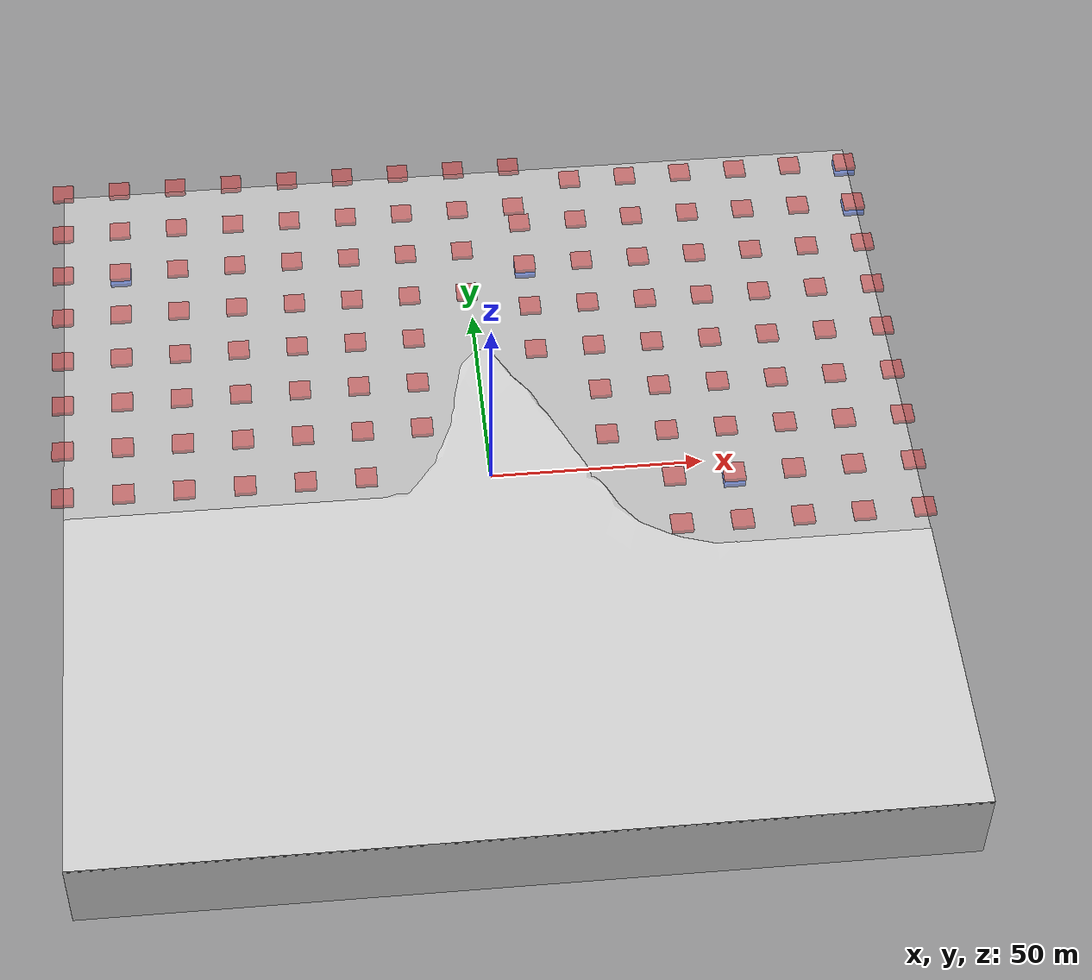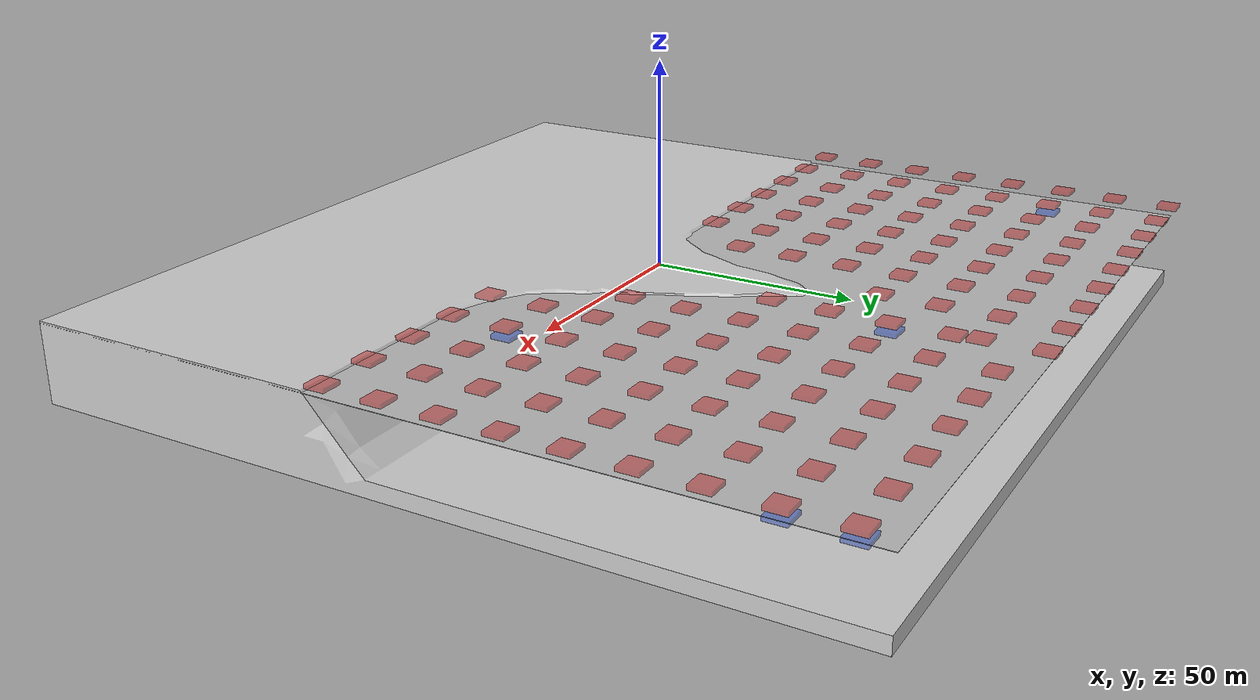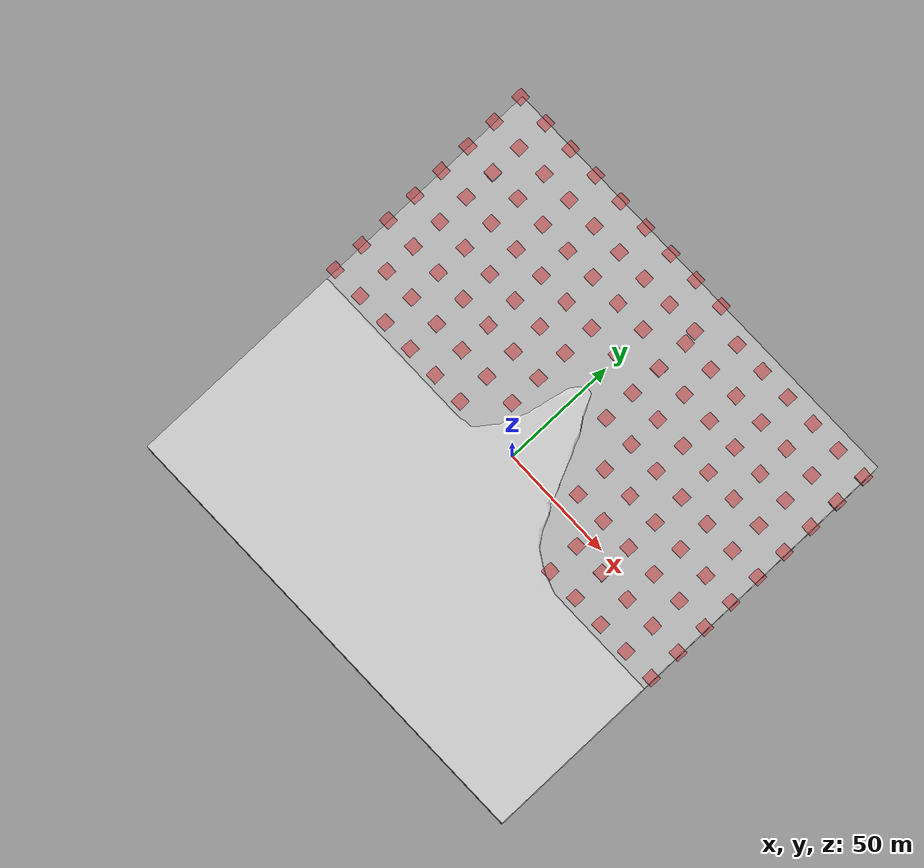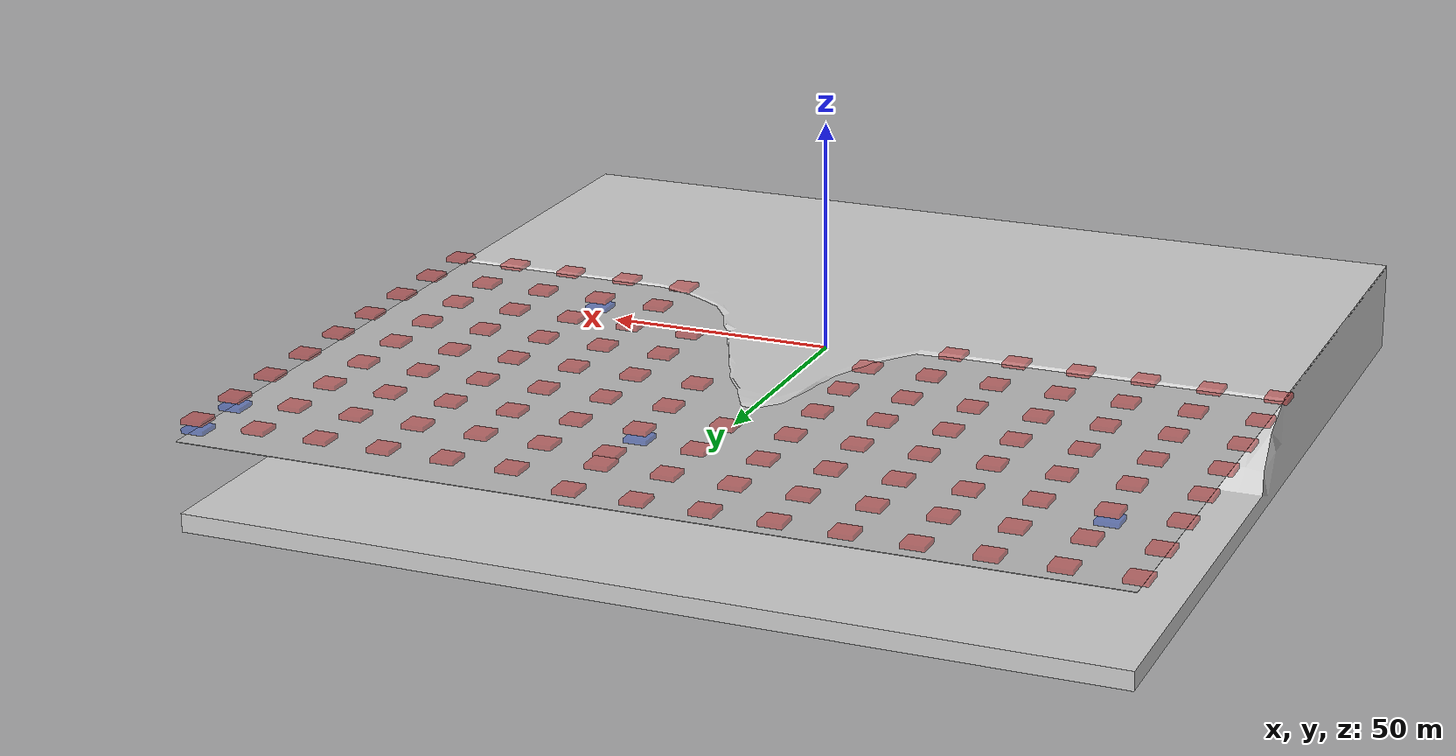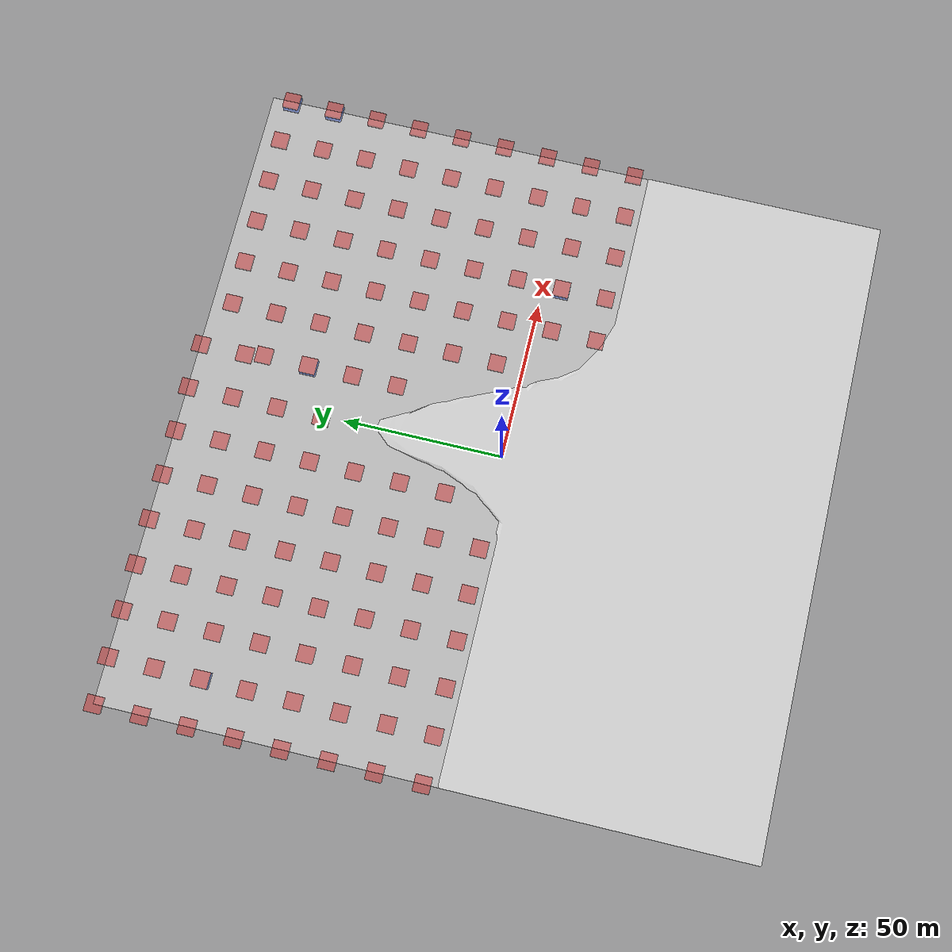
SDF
<?xml version="1.0"?>
<sdf version="1.5">
  <world name="default">
    <include>
      <uri>model://sun</uri>
    </include>
    <include>
      <uri>model://smooth</uri>
      <pose>0 0 0 0 0 0</pose>
    </include>
    <include>
      <name>rect red 1</name>
      <uri>model://rect_red</uri>
      <pose>-100.00 0.00 2 0 0 0</pose>
    </include>
    <include>
      <name>rect red 2</name>
      <uri>model://rect_red</uri>
      <pose>-100.00 14.14 2 0 0 0</pose>
    </include>
    <include>
      <name>rect red 3</name>
      <uri>model://rect_red</uri>
      <pose>-100.00 28.28 2 0 0 0</pose>
    </include>
    <include>
      <name>rect red 4</name>
      <uri>model://rect_red</uri>
      <pose>-100.00 42.43 2 0 0 0</pose>
    </include>
    <include>
      <name>rect red 5</name>
      <uri>model://rect_red</uri>
      <pose>-100.00 56.57 2 0 0 0</pose>
    </include>
    <include>
      <name>rect red 6</name>
      <uri>model://rect_red</uri>
      <pose>-100.00 70.71 2 0 0 0</pose>
    </include>
    <include>
      <name>rect red 7</name>
      <uri>model://rect_red</uri>
      <pose>-100.00 84.85 2 0 0 0</pose>
    </include>
    <include>
      <name>rect red 8</name>
      <uri>model://rect_red</uri>
      <pose>-100.00 98.99 2 0 0 0</pose>
    </include>
    <include>
      <name>rect red 9</name>
      <uri>model://rect_red</uri>
      <pose>-85.86 0.00 2 0 0 0</pose>
    </include>
    <include>
      <name>rect red 10</name>
      <uri>model://rect_red</uri>
      <pose>-85.86 14.14 2 0 0 0</pose>
    </include>
    <include>
      <name>rect red 11</name>
      <uri>model://rect_red</uri>
      <pose>-85.86 28.28 2 0 0 0</pose>
    </include>
    <include>
      <name>rect red 12</name>
      <uri>model://rect_red</uri>
      <pose>-85.86 42.43 2 0 0 0</pose>
    </include>
    <include>
      <name>rect red 13</name>
      <uri>model://rect_red</uri>
      <pose>-85.86 56.57 2 0 0 0</pose>
    </include>
    <include>
      <name>rect red 14</name>
      <uri>model://rect_red</uri>
      <pose>-85.86 70.71 2 0 0 0</pose>
    </include>
    <include>
      <name>rect red 15</name>
      <uri>model://rect_red</uri>
      <pose>-85.86 84.85 2 0 0 0</pose>
    </include>
    <include>
      <name>rect red 16</name>
      <uri>model://rect_red</uri>
      <pose>-85.86 98.99 2 0 0 0</pose>
    </include>
    <include>
      <name>rect red 17</name>
      <uri>model://rect_red</uri>
      <pose>-71.72 0.00 2 0 0 0</pose>
    </include>
    <include>
      <name>rect red 18</name>
      <uri>model://rect_red</uri>
      <pose>-71.72 14.14 2 0 0 0</pose>
    </include>
    <include>
      <name>rect red 19</name>
      <uri>model://rect_red</uri>
      <pose>-71.72 28.28 2 0 0 0</pose>
    </include>
    <include>
      <name>rect red 20</name>
      <uri>model://rect_red</uri>
      <pose>-71.72 42.43 2 0 0 0</pose>
    </include>
    <include>
      <name>rect red 21</name>
      <uri>model://rect_red</uri>
      <pose>-71.72 56.57 2 0 0 0</pose>
    </include>
    <include>
      <name>rect red 22</name>
      <uri>model://rect_red</uri>
      <pose>-71.72 70.71 2 0 0 0</pose>
    </include>
    <include>
      <name>rect red 23</name>
      <uri>model://rect_red</uri>
      <pose>-71.72 84.85 2 0 0 0</pose>
    </include>
    <include>
      <name>rect red 24</name>
      <uri>model://rect_red</uri>
      <pose>-71.72 98.99 2 0 0 0</pose>
    </include>
    <include>
      <name>rect red 25</name>
      <uri>model://rect_red</uri>
      <pose>-57.57 0.00 2 0 0 0</pose>
    </include>
    <include>
      <name>rect red 26</name>
      <uri>model://rect_red</uri>
      <pose>-57.57 14.14 2 0 0 0</pose>
    </include>
    <include>
      <name>rect red 27</name>
      <uri>model://rect_red</uri>
      <pose>-57.57 28.28 2 0 0 0</pose>
    </include>
    <include>
      <name>rect red 28</name>
      <uri>model://rect_red</uri>
      <pose>-57.57 42.43 2 0 0 0</pose>
    </include>
    <include>
      <name>rect red 29</name>
      <uri>model://rect_red</uri>
      <pose>-57.57 56.57 2 0 0 0</pose>
    </include>
    <include>
      <name>rect red 30</name>
      <uri>model://rect_red</uri>
      <pose>-57.57 70.71 2 0 0 0</pose>
    </include>
    <include>
      <name>rect red 31</name>
      <uri>model://rect_red</uri>
      <pose>-57.57 84.85 2 0 0 0</pose>
    </include>
    <include>
      <name>rect red 32</name>
      <uri>model://rect_red</uri>
      <pose>-57.57 98.99 2 0 0 0</pose>
    </include>
    <include>
      <name>rect red 33</name>
      <uri>model://rect_red</uri>
      <pose>-43.43 0.00 2 0 0 0</pose>
    </include>
    <include>
      <name>rect red 34</name>
      <uri>model://rect_red</uri>
      <pose>-43.43 14.14 2 0 0 0</pose>
    </include>
    <include>
      <name>rect red 35</name>
      <uri>model://rect_red</uri>
      <pose>-43.43 28.28 2 0 0 0</pose>
    </include>
    <include>
      <name>rect red 36</name>
      <uri>model://rect_red</uri>
      <pose>-43.43 42.43 2 0 0 0</pose>
    </include>
    <include>
      <name>rect red 37</name>
      <uri>model://rect_red</uri>
      <pose>-43.43 56.57 2 0 0 0</pose>
    </include>
    <include>
      <name>rect red 38</name>
      <uri>model://rect_red</uri>
      <pose>-43.43 70.71 2 0 0 0</pose>
    </include>
    <include>
      <name>rect red 39</name>
      <uri>model://rect_red</uri>
      <pose>-43.43 84.85 2 0 0 0</pose>
    </include>
    <include>
      <name>rect red 40</name>
      <uri>model://rect_red</uri>
      <pose>-43.43 98.99 2 0 0 0</pose>
    </include>
    <include>
      <name>rect red 41</name>
      <uri>model://rect_red</uri>
      <pose>-29.29 0.00 2 0 0 0</pose>
    </include>
    <include>
      <name>rect red 42</name>
      <uri>model://rect_red</uri>
      <pose>-29.29 14.14 2 0 0 0</pose>
    </include>
    <include>
      <name>rect red 43</name>
      <uri>model://rect_red</uri>
      <pose>-29.29 28.28 2 0 0 0</pose>
    </include>
    <include>
      <name>rect red 44</name>
      <uri>model://rect_red</uri>
      <pose>-29.29 42.43 2 0 0 0</pose>
    </include>
    <include>
      <name>rect red 45</name>
      <uri>model://rect_red</uri>
      <pose>-29.29 56.57 2 0 0 0</pose>
    </include>
    <include>
      <name>rect red 46</name>
      <uri>model://rect_red</uri>
      <pose>-29.29 70.71 2 0 0 0</pose>
    </include>
    <include>
      <name>rect red 47</name>
      <uri>model://rect_red</uri>
      <pose>-29.29 84.85 2 0 0 0</pose>
    </include>
    <include>
      <name>rect red 48</name>
      <uri>model://rect_red</uri>
      <pose>-29.29 98.99 2 0 0 0</pose>
    </include>
    <include>
      <name>rect red 49</name>
      <uri>model://rect_red</uri>
      <pose>-15.15 14.14 2 0 0 0</pose>
    </include>
    <include>
      <name>rect red 50</name>
      <uri>model://rect_red</uri>
      <pose>-15.15 28.28 2 0 0 0</pose>
    </include>
    <include>
      <name>rect red 51</name>
      <uri>model://rect_red</uri>
      <pose>-15.15 42.43 2 0 0 0</pose>
    </include>
    <include>
      <name>rect red 52</name>
      <uri>model://rect_red</uri>
      <pose>-15.15 56.57 2 0 0 0</pose>
    </include>
    <include>
      <name>rect red 53</name>
      <uri>model://rect_red</uri>
      <pose>-15.15 70.71 2 0 0 0</pose>
    </include>
    <include>
      <name>rect red 54</name>
      <uri>model://rect_red</uri>
      <pose>-15.15 84.85 2 0 0 0</pose>
    </include>
    <include>
      <name>rect red 55</name>
      <uri>model://rect_red</uri>
      <pose>-15.15 98.99 2 0 0 0</pose>
    </include>
    <include>
      <name>rect red 56</name>
      <uri>model://rect_red</uri>
      <pose>-1.01 56.57 2 0 0 0</pose>
    </include>
    <include>
      <name>rect red 57</name>
      <uri>model://rect_red</uri>
      <pose>-1.01 70.71 2 0 0 0</pose>
    </include>
    <include>
      <name>rect red 58</name>
      <uri>model://rect_red</uri>
      <pose>-1.01 84.85 2 0 0 0</pose>
    </include>
    <include>
      <name>rect red 59</name>
      <uri>model://rect_red</uri>
      <pose>-1.01 98.99 2 0 0 0</pose>
    </include>
    <include>
      <name>rect red 60</name>
      <uri>model://rect_red</uri>
      <pose>13.14 84.85 2 0 0 0</pose>
    </include>
    <include>
      <name>rect red 61</name>
      <uri>model://rect_red</uri>
      <pose>13.14 98.99 2 0 0 0</pose>
    </include>
    <include>
      <name>rect red 62</name>
      <uri>model://rect_red</uri>
      <pose>14.14 36.57 2 0 0 0</pose>
    </include>
    <include>
      <name>rect red 63</name>
      <uri>model://rect_red</uri>
      <pose>14.14 50.71 2 0 0 0</pose>
    </include>
    <include>
      <name>rect red 64</name>
      <uri>model://rect_red</uri>
      <pose>14.14 64.85 2 0 0 0</pose>
    </include>
    <include>
      <name>rect red 65</name>
      <uri>model://rect_red</uri>
      <pose>14.14 78.99 2 0 0 0</pose>
    </include>
    <include>
      <name>rect red 66</name>
      <uri>model://rect_red</uri>
      <pose>28.28 8.28 2 0 0 0</pose>
    </include>
    <include>
      <name>rect red 67</name>
      <uri>model://rect_red</uri>
      <pose>28.28 22.43 2 0 0 0</pose>
    </include>
    <include>
      <name>rect red 68</name>
      <uri>model://rect_red</uri>
      <pose>28.28 36.57 2 0 0 0</pose>
    </include>
    <include>
      <name>rect red 69</name>
      <uri>model://rect_red</uri>
      <pose>28.28 50.71 2 0 0 0</pose>
    </include>
    <include>
      <name>rect red 70</name>
      <uri>model://rect_red</uri>
      <pose>28.28 64.85 2 0 0 0</pose>
    </include>
    <include>
      <name>rect red 71</name>
      <uri>model://rect_red</uri>
      <pose>28.28 78.99 2 0 0 0</pose>
    </include>
    <include>
      <name>rect red 72</name>
      <uri>model://rect_red</uri>
      <pose>28.28 93.14 2 0 0 0</pose>
    </include>
    <include>
      <name>rect red 73</name>
      <uri>model://rect_red</uri>
      <pose>42.43 -20.00 2 0 0 0</pose>
    </include>
    <include>
      <name>rect red 74</name>
      <uri>model://rect_red</uri>
      <pose>42.43 -5.86 2 0 0 0</pose>
    </include>
    <include>
      <name>rect red 75</name>
      <uri>model://rect_red</uri>
      <pose>42.43 8.28 2 0 0 0</pose>
    </include>
    <include>
      <name>rect red 76</name>
      <uri>model://rect_red</uri>
      <pose>42.43 22.43 2 0 0 0</pose>
    </include>
    <include>
      <name>rect red 77</name>
      <uri>model://rect_red</uri>
      <pose>42.43 36.57 2 0 0 0</pose>
    </include>
    <include>
      <name>rect red 78</name>
      <uri>model://rect_red</uri>
      <pose>42.43 50.71 2 0 0 0</pose>
    </include>
    <include>
      <name>rect red 79</name>
      <uri>model://rect_red</uri>
      <pose>42.43 64.85 2 0 0 0</pose>
    </include>
    <include>
      <name>rect red 80</name>
      <uri>model://rect_red</uri>
      <pose>42.43 78.99 2 0 0 0</pose>
    </include>
    <include>
      <name>rect red 81</name>
      <uri>model://rect_red</uri>
      <pose>42.43 93.14 2 0 0 0</pose>
    </include>
    <include>
      <name>rect red 82</name>
      <uri>model://rect_red</uri>
      <pose>56.57 -20.00 2 0 0 0</pose>
    </include>
    <include>
      <name>rect red 83</name>
      <uri>model://rect_red</uri>
      <pose>56.57 -5.86 2 0 0 0</pose>
    </include>
    <include>
      <name>rect red 84</name>
      <uri>model://rect_red</uri>
      <pose>56.57 8.28 2 0 0 0</pose>
    </include>
    <include>
      <name>rect red 85</name>
      <uri>model://rect_red</uri>
      <pose>56.57 22.43 2 0 0 0</pose>
    </include>
    <include>
      <name>rect red 86</name>
      <uri>model://rect_red</uri>
      <pose>56.57 36.57 2 0 0 0</pose>
    </include>
    <include>
      <name>rect red 87</name>
      <uri>model://rect_red</uri>
      <pose>56.57 50.71 2 0 0 0</pose>
    </include>
    <include>
      <name>rect red 88</name>
      <uri>model://rect_red</uri>
      <pose>56.57 64.85 2 0 0 0</pose>
    </include>
    <include>
      <name>rect red 89</name>
      <uri>model://rect_red</uri>
      <pose>56.57 78.99 2 0 0 0</pose>
    </include>
    <include>
      <name>rect red 90</name>
      <uri>model://rect_red</uri>
      <pose>56.57 93.14 2 0 0 0</pose>
    </include>
    <include>
      <name>rect red 91</name>
      <uri>model://rect_red</uri>
      <pose>70.71 -20.00 2 0 0 0</pose>
    </include>
    <include>
      <name>rect red 92</name>
      <uri>model://rect_red</uri>
      <pose>70.71 -5.86 2 0 0 0</pose>
    </include>
    <include>
      <name>rect red 93</name>
      <uri>model://rect_red</uri>
      <pose>70.71 8.28 2 0 0 0</pose>
    </include>
    <include>
      <name>rect red 94</name>
      <uri>model://rect_red</uri>
      <pose>70.71 22.43 2 0 0 0</pose>
    </include>
    <include>
      <name>rect red 95</name>
      <uri>model://rect_red</uri>
      <pose>70.71 36.57 2 0 0 0</pose>
    </include>
    <include>
      <name>rect red 96</name>
      <uri>model://rect_red</uri>
      <pose>70.71 50.71 2 0 0 0</pose>
    </include>
    <include>
      <name>rect red 97</name>
      <uri>model://rect_red</uri>
      <pose>70.71 64.85 2 0 0 0</pose>
    </include>
    <include>
      <name>rect red 98</name>
      <uri>model://rect_red</uri>
      <pose>70.71 78.99 2 0 0 0</pose>
    </include>
    <include>
      <name>rect red 99</name>
      <uri>model://rect_red</uri>
      <pose>70.71 93.14 2 0 0 0</pose>
    </include>
    <include>
      <name>rect red 100</name>
      <uri>model://rect_red</uri>
      <pose>84.85 -20.00 2 0 0 0</pose>
    </include>
    <include>
      <name>rect red 101</name>
      <uri>model://rect_red</uri>
      <pose>84.85 -5.86 2 0 0 0</pose>
    </include>
    <include>
      <name>rect red 102</name>
      <uri>model://rect_red</uri>
      <pose>84.85 8.28 2 0 0 0</pose>
    </include>
    <include>
      <name>rect red 103</name>
      <uri>model://rect_red</uri>
      <pose>84.85 22.43 2 0 0 0</pose>
    </include>
    <include>
      <name>rect red 104</name>
      <uri>model://rect_red</uri>
      <pose>84.85 36.57 2 0 0 0</pose>
    </include>
    <include>
      <name>rect red 105</name>
      <uri>model://rect_red</uri>
      <pose>84.85 50.71 2 0 0 0</pose>
    </include>
    <include>
      <name>rect red 106</name>
      <uri>model://rect_red</uri>
      <pose>84.85 64.85 2 0 0 0</pose>
    </include>
    <include>
      <name>rect red 107</name>
      <uri>model://rect_red</uri>
      <pose>84.85 78.99 2 0 0 0</pose>
    </include>
    <include>
      <name>rect red 108</name>
      <uri>model://rect_red</uri>
      <pose>84.85 93.14 2 0 0 0</pose>
    </include>
    <include>
      <name>rect red 109</name>
      <uri>model://rect_red</uri>
      <pose>98.99 -20.00 2 0 0 0</pose>
    </include>
    <include>
      <name>rect red 110</name>
      <uri>model://rect_red</uri>
      <pose>98.99 -5.86 2 0 0 0</pose>
    </include>
    <include>
      <name>rect red 111</name>
      <uri>model://rect_red</uri>
      <pose>98.99 8.28 2 0 0 0</pose>
    </include>
    <include>
      <name>rect red 112</name>
      <uri>model://rect_red</uri>
      <pose>98.99 22.43 2 0 0 0</pose>
    </include>
    <include>
      <name>rect red 113</name>
      <uri>model://rect_red</uri>
      <pose>98.99 36.57 2 0 0 0</pose>
    </include>
    <include>
      <name>rect red 114</name>
      <uri>model://rect_red</uri>
      <pose>98.99 50.71 2 0 0 0</pose>
    </include>
    <include>
      <name>rect red 115</name>
      <uri>model://rect_red</uri>
      <pose>98.99 64.85 2 0 0 0</pose>
    </include>
    <include>
      <name>rect red 116</name>
      <uri>model://rect_red</uri>
      <pose>98.99 78.99 2 0 0 0</pose>
    </include>
    <include>
      <name>rect red 117</name>
      <uri>model://rect_red</uri>
      <pose>98.99 93.14 2 0 0 0</pose>
    </include>
    <include>
      <name>rect blue 118</name>
      <uri>model://rect_blue</uri>
      <pose>-85.86 70.71 0 0 0 0</pose>
    </include>
    <include>
      <name>rect blue 119</name>
      <uri>model://rect_blue</uri>
      <pose>14.14 64.85 0 0 0 0</pose>
    </include>
    <include>
      <name>rect blue 120</name>
      <uri>model://rect_blue</uri>
      <pose>56.57 -5.86 0 0 0 0</pose>
    </include>
    <include>
      <name>rect blue 121</name>
      <uri>model://rect_blue</uri>
      <pose>98.99 78.99 0 0 0 0</pose>
    </include>
    <include>
      <name>rect blue 122</name>
      <uri>model://rect_blue</uri>
      <pose>98.99 93.14 0 0 0 0</pose>
    </include>
    <spherical_coordinates>
      <surface_model>EARTH_WGS84</surface_model>
      <latitude_deg>43.81678595809796</latitude_deg>
      <longitude_deg>28.581366799068558</longitude_deg>
      <elevation>1.7</elevation>
    </spherical_coordinates>
  </world>
</sdf>

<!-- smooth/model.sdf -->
<sdf version="1.5">
  <model name="model">
      <pose>0 0 0  0 0 0</pose>
      <static>true</static>
      <link name="body">
        <collision name="seabed">
          <pose>0 0 -5.5 0 0 0</pose>
          <geometry>
            <mesh><uri>model://smooth/meshes/av4vai_world.dae</uri></mesh>
          </geometry>
          <material>
            <script>
              <uri>model://smooth/materials/scripts/sand.material</uri>
              <name>UUVSimulator/SandAndStones</name>
            </script>
          </material>
        </collision>

        <visual name="seabed">
          <pose>0 0 -5.5 0 0 0</pose>
          <geometry>
            <mesh><uri>model://smooth/meshes/av4vai_world.dae</uri></mesh>
          </geometry>
          <material>
            <script>
              <uri>model://smooth/materials/scripts/sand.material</uri>
              <name>UUVSimulator/SandAndStones</name>
            </script>
          </material>
        </visual>
        <visual name="surface">
          <pose>0 0 0 0 0 0</pose>
          <geometry>
            <box>
              <size>200 200 .1</size>
            </box>
          </geometry>
          <material>
            <script>
              <uri>model://smooth/materials/scripts/water.material</uri>
              <name>UUVSimulator/StaticWater</name>
            </script>
          </material>
        </visual>
      </link>
    </model>
</sdf>

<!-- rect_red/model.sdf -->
<sdf version="1.5">
  <model name="rect_red">
    <static>true</static>
    <link name="link">
      <visual name="visual">
        <pose>0 0 0.5 0 0 0</pose>
        <geometry>
          <box>
            <size>5 5 1</size>
          </box>
	</geometry>
	<material>
          <script>
            <name>Gazebo/RedTransparent</name>
            <uri>file://media/materials/scripts/gazebo.material</uri>
          </script>
        </material>
      </visual>
    </link>
  </model>
</sdf>

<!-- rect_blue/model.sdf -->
<sdf version="1.5">
  <model name="rect_blue">
    <static>true</static>
    <link name="link">
      <visual name="visual">
        <pose>0 0 0.5 0 0 0</pose>
        <geometry>
          <box>
            <size>5 5 1</size>
          </box>
	</geometry>
	<material>
          <script>
            <name>Gazebo/BlueTransparent</name>
            <uri>file://media/materials/scripts/gazebo.material</uri>
          </script>
        </material>
      </visual>
    </link>
  </model>
</sdf>
